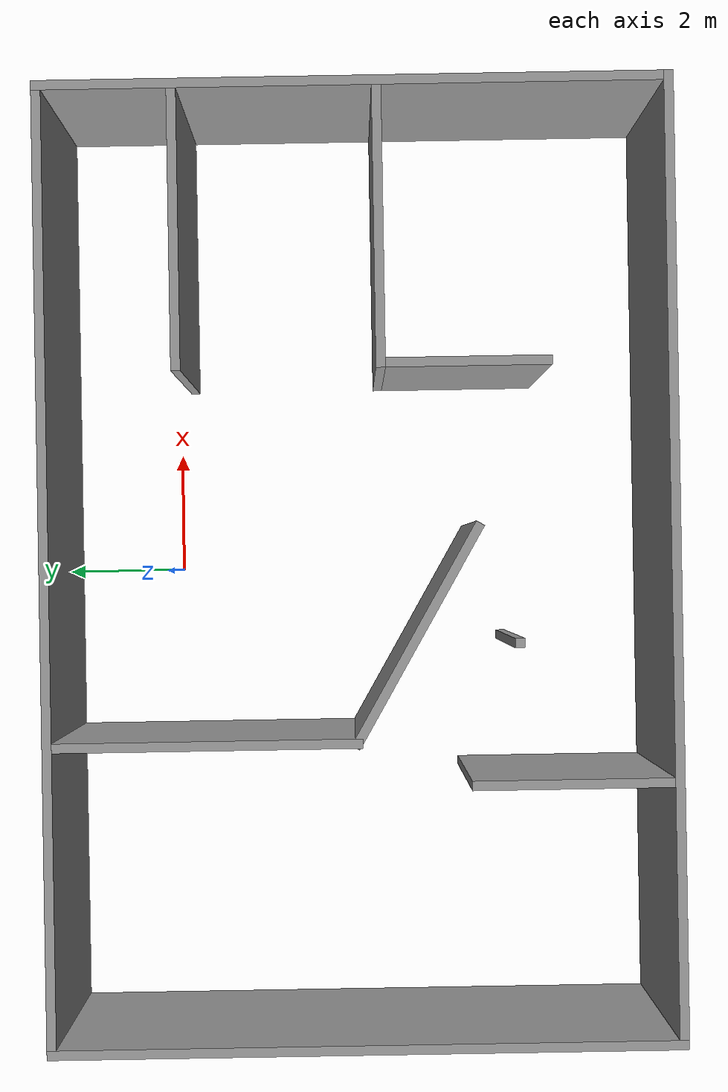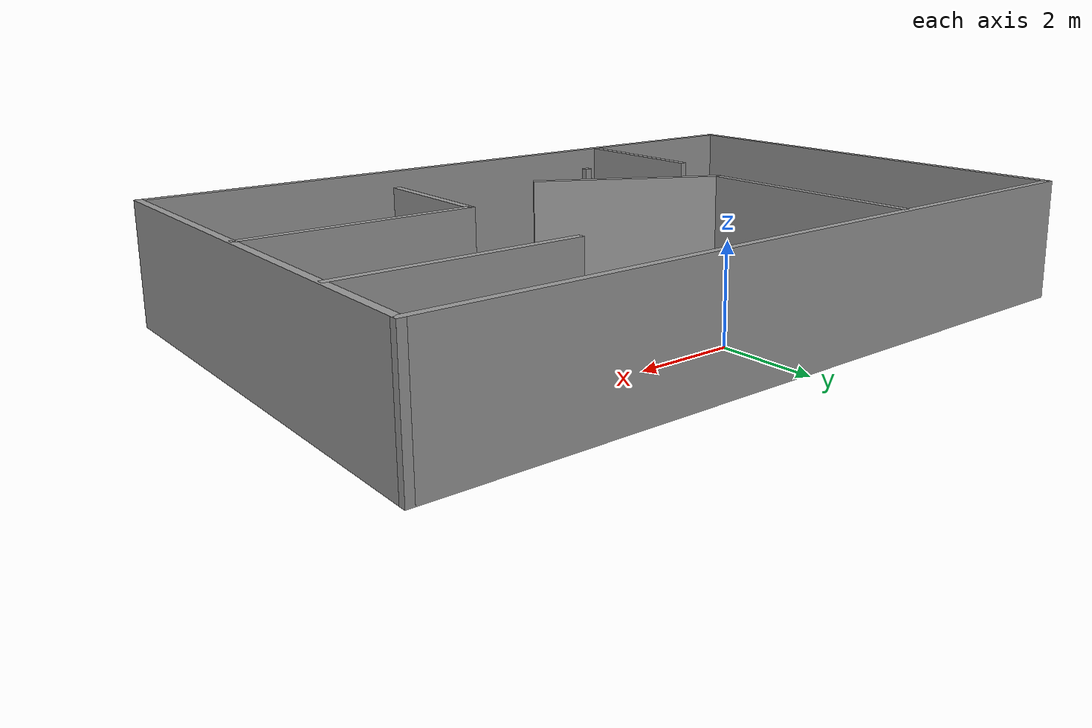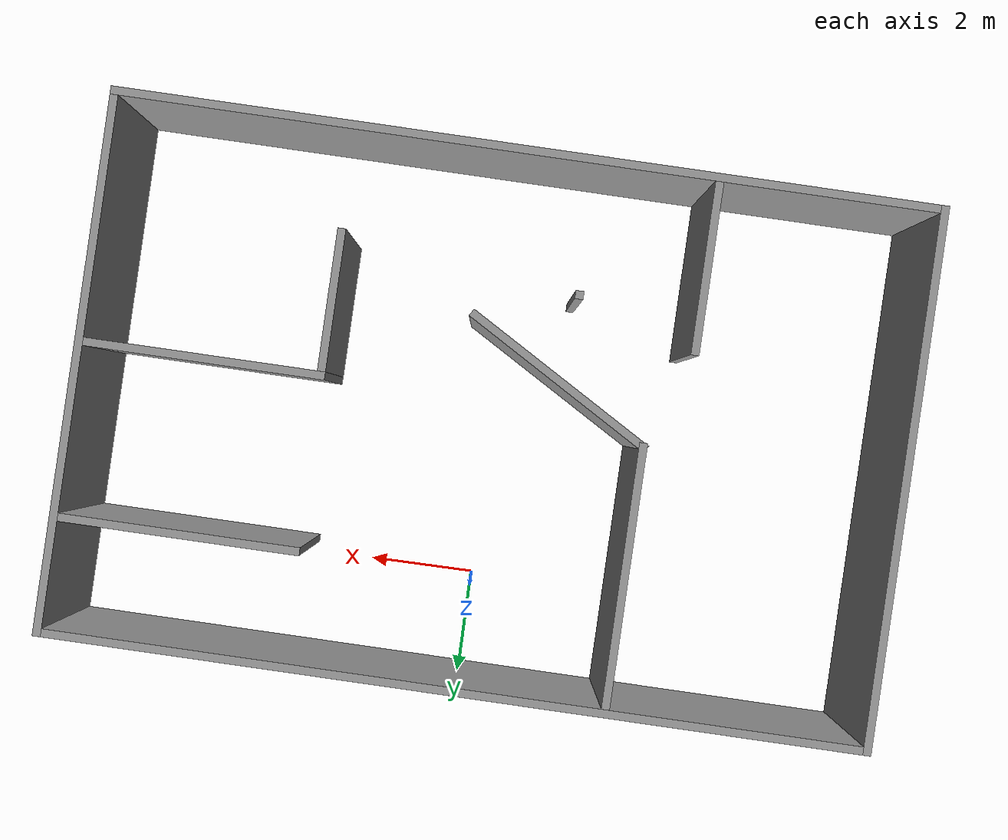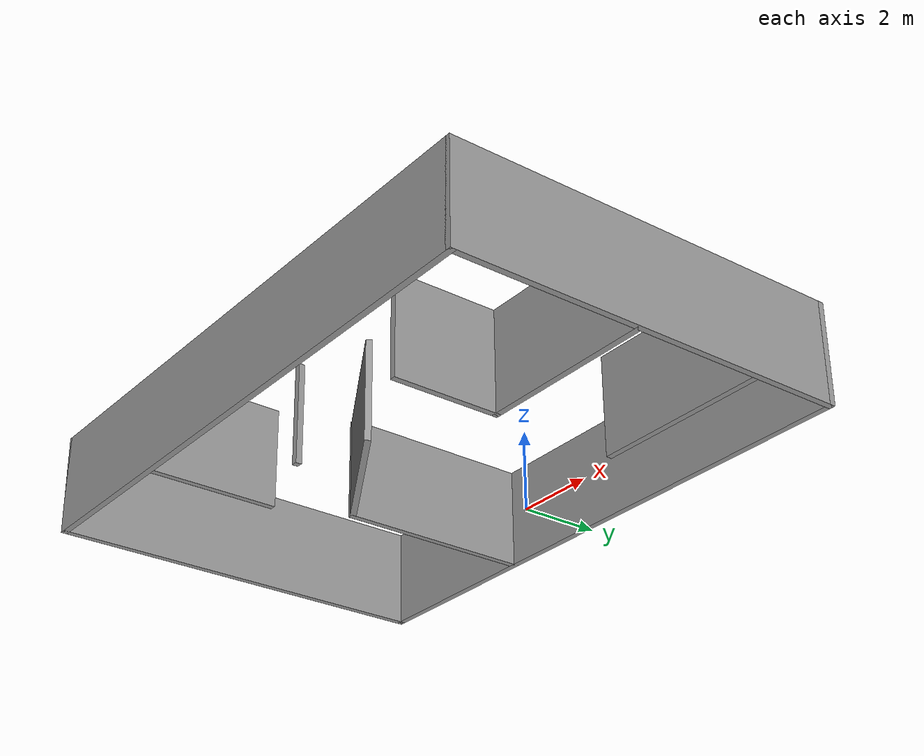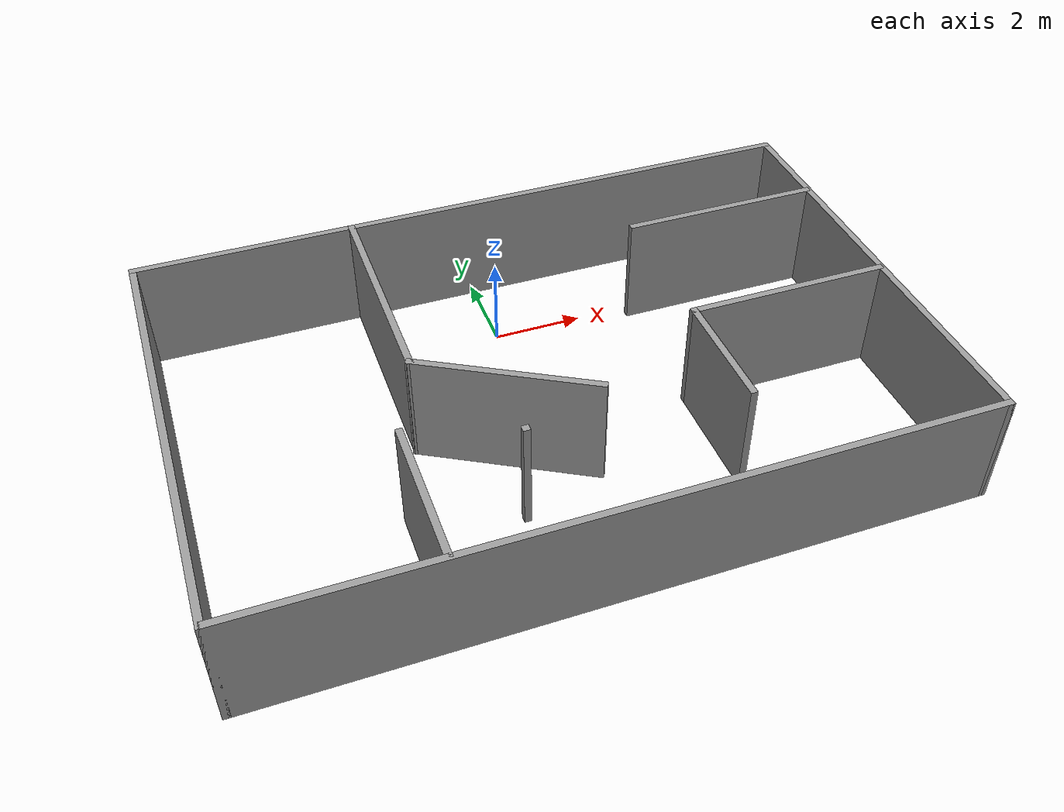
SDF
<?xml version='1.0'?>
<sdf version='1.6'>
  <model name='Maze1'>
    <pose frame=''>0.038082 -3.0652 0 0 -0 0</pose>
    <link name='Wall_4'>
      <collision name='Wall_4_Collision'>
        <geometry>
          <box>
            <size>0.15 0.15 2.5</size>
          </box>
        </geometry>
        <pose frame=''>0 0 1.25 0 -0 0</pose>
      </collision>
      <visual name='Wall_4_Visual'>
        <pose frame=''>0 0 1.25 0 -0 0</pose>
        <geometry>
          <box>
            <size>0.15 0.15 2.5</size>
          </box>
        </geometry>
        <material>
          <script>
            <uri>file://media/materials/scripts/gazebo.material</uri>
            <name>Gazebo/Grey</name>
          </script>
          <ambient>1 1 1 1</ambient>
        </material>
        <meta>
          <layer>0</layer>
        </meta>
      </visual>
      <pose frame=''>-1.25395 -2.47084 0 0 -0 0</pose>
    </link>
    <link name='Wall_43'>
      <collision name='Wall_43_Collision'>
        <geometry>
          <box>
            <size>10 0.15 2.5</size>
          </box>
        </geometry>
        <pose frame=''>0 0 1.25 0 -0 0</pose>
      </collision>
      <visual name='Wall_43_Visual'>
        <pose frame=''>0 0 1.25 0 -0 0</pose>
        <geometry>
          <box>
            <size>10 0.15 2.5</size>
          </box>
        </geometry>
        <material>
          <script>
            <uri>file://media/materials/scripts/gazebo.material</uri>
            <name>Gazebo/Grey</name>
          </script>
          <ambient>1 1 1 1</ambient>
        </material>
        <meta>
          <layer>0</layer>
        </meta>
      </visual>
      <pose frame=''>-7.55 0 0 0 -0 -1.5708</pose>
    </link>
    <link name='Wall_44'>
      <collision name='Wall_44_Collision'>
        <geometry>
          <box>
            <size>15.25 0.15 2.5</size>
          </box>
        </geometry>
        <pose frame=''>0 0 1.25 0 -0 0</pose>
      </collision>
      <visual name='Wall_44_Visual'>
        <pose frame=''>0 0 1.25 0 -0 0</pose>
        <geometry>
          <box>
            <size>15.25 0.15 2.5</size>
          </box>
        </geometry>
        <material>
          <script>
            <uri>file://media/materials/scripts/gazebo.material</uri>
            <name>Gazebo/Grey</name>
          </script>
          <ambient>1 1 1 1</ambient>
        </material>
        <meta>
          <layer>0</layer>
        </meta>
      </visual>
      <pose frame=''>0 -4.925 0 0 -0 0</pose>
    </link>
    <link name='Wall_45'>
      <collision name='Wall_45_Collision'>
        <geometry>
          <box>
            <size>10 0.15 2.5</size>
          </box>
        </geometry>
        <pose frame=''>0 0 1.25 0 -0 0</pose>
      </collision>
      <visual name='Wall_45_Visual'>
        <pose frame=''>0 0 1.25 0 -0 0</pose>
        <geometry>
          <box>
            <size>10 0.15 2.5</size>
          </box>
        </geometry>
        <material>
          <script>
            <uri>file://media/materials/scripts/gazebo.material</uri>
            <name>Gazebo/Grey</name>
          </script>
          <ambient>1 1 1 1</ambient>
        </material>
        <meta>
          <layer>0</layer>
        </meta>
      </visual>
      <pose frame=''>7.55 0 0 0 -0 1.5708</pose>
    </link>
    <link name='Wall_46'>
      <collision name='Wall_46_Collision'>
        <geometry>
          <box>
            <size>15.25 0.15 2.5</size>
          </box>
        </geometry>
        <pose frame=''>0 0 1.25 0 -0 0</pose>
      </collision>
      <visual name='Wall_46_Visual'>
        <pose frame=''>0 0 1.25 0 -0 0</pose>
        <geometry>
          <box>
            <size>15.25 0.15 2.5</size>
          </box>
        </geometry>
        <material>
          <script>
            <uri>file://media/materials/scripts/gazebo.material</uri>
            <name>Gazebo/Grey</name>
          </script>
          <ambient>1 1 1 1</ambient>
        </material>
        <meta>
          <layer>0</layer>
        </meta>
      </visual>
      <pose frame=''>0 4.925 0 0 -0 3.14159</pose>
    </link>
    <link name='Wall_48'>
      <collision name='Wall_48_Collision'>
        <geometry>
          <box>
            <size>5 0.15 2.5</size>
          </box>
        </geometry>
        <pose frame=''>0 0 1.25 0 -0 0</pose>
      </collision>
      <visual name='Wall_48_Visual'>
        <pose frame=''>0 0 1.25 0 -0 0</pose>
        <geometry>
          <box>
            <size>5 0.15 2.5</size>
          </box>
        </geometry>
        <material>
          <script>
            <uri>file://media/materials/scripts/gazebo.material</uri>
            <name>Gazebo/Grey</name>
          </script>
          <ambient>1 1 1 1</ambient>
        </material>
        <meta>
          <layer>0</layer>
        </meta>
      </visual>
      <pose frame=''>-2.77624 2.5 0 0 -0 -1.5708</pose>
    </link>
    <link name='Wall_49'>
      <collision name='Wall_49_Collision'>
        <geometry>
          <box>
            <size>4 0.15 2.5</size>
          </box>
        </geometry>
        <pose frame=''>0 0 1.25 0 -0 0</pose>
      </collision>
      <visual name='Wall_49_Visual'>
        <pose frame=''>0 0 1.25 0 -0 0</pose>
        <geometry>
          <box>
            <size>4 0.15 2.5</size>
          </box>
        </geometry>
        <material>
          <script>
            <uri>file://media/materials/scripts/gazebo.material</uri>
            <name>Gazebo/Grey</name>
          </script>
          <ambient>1 1 1 1</ambient>
        </material>
        <meta>
          <layer>0</layer>
        </meta>
      </visual>
      <pose frame=''>-1.10914 -0.8875 0 0 -0 -0.523599</pose>
    </link>
    <link name='Wall_51'>
      <collision name='Wall_51_Collision'>
        <geometry>
          <box>
            <size>4.5 0.15 2.5</size>
          </box>
        </geometry>
        <pose frame=''>0 0 1.25 0 -0 0</pose>
      </collision>
      <visual name='Wall_51_Visual'>
        <pose frame=''>0 0 1.25 0 -0 0</pose>
        <geometry>
          <box>
            <size>4.5 0.15 2.5</size>
          </box>
        </geometry>
        <material>
          <script>
            <uri>file://media/materials/scripts/gazebo.material</uri>
            <name>Gazebo/Grey</name>
          </script>
          <ambient>1 1 1 1</ambient>
        </material>
        <meta>
          <layer>0</layer>
        </meta>
      </visual>
      <pose frame=''>5.32447 2.82131 0 0 -0 3.14159</pose>
    </link>
    <link name='Wall_53'>
      <collision name='Wall_53_Collision'>
        <geometry>
          <box>
            <size>3.25 0.15 2.5</size>
          </box>
        </geometry>
        <pose frame=''>0 0 1.25 0 -0 0</pose>
      </collision>
      <visual name='Wall_53_Visual'>
        <pose frame=''>0 0 1.25 0 -0 0</pose>
        <geometry>
          <box>
            <size>3.25 0.15 2.5</size>
          </box>
        </geometry>
        <material>
          <script>
            <uri>file://media/materials/scripts/gazebo.material</uri>
            <name>Gazebo/Grey</name>
          </script>
          <ambient>1 1 1 1</ambient>
        </material>
        <meta>
          <layer>0</layer>
        </meta>
      </visual>
      <pose frame=''>-3.46399 -3.31525 0 0 -0 1.5708</pose>
    </link>
    <link name='Wall_55'>
      <collision name='Wall_55_Collision'>
        <geometry>
          <box>
            <size>4.5 0.15 2.5</size>
          </box>
        </geometry>
        <pose frame=''>0 0 1.25 0 -0 0</pose>
      </collision>
      <visual name='Wall_55_Visual'>
        <pose frame=''>0 0 1.25 0 -0 0</pose>
        <geometry>
          <box>
            <size>4.5 0.15 2.5</size>
          </box>
        </geometry>
        <material>
          <script>
            <uri>file://media/materials/scripts/gazebo.material</uri>
            <name>Gazebo/Grey</name>
          </script>
          <ambient>1 1 1 1</ambient>
        </material>
        <meta>
          <layer>0</layer>
        </meta>
      </visual>
      <pose frame=''>5.32447 -0.374681 0 0 -0 3.14159</pose>
    </link>
    <link name='Wall_56'>
      <collision name='Wall_56_Collision'>
        <geometry>
          <box>
            <size>2.75 0.15 2.5</size>
          </box>
        </geometry>
        <pose frame=''>0 0 1.25 0 -0 0</pose>
      </collision>
      <visual name='Wall_56_Visual'>
        <pose frame=''>0 0 1.25 0 -0 0</pose>
        <geometry>
          <box>
            <size>2.75 0.15 2.5</size>
          </box>
        </geometry>
        <material>
          <script>
            <uri>file://media/materials/scripts/gazebo.material</uri>
            <name>Gazebo/Grey</name>
          </script>
          <ambient>1 1 1 1</ambient>
        </material>
        <meta>
          <layer>0</layer>
        </meta>
      </visual>
      <pose frame=''>3.14947 -1.67468 0 0 -0 -1.5708</pose>
    </link>
    <static>1</static>
  </model>
</sdf>
